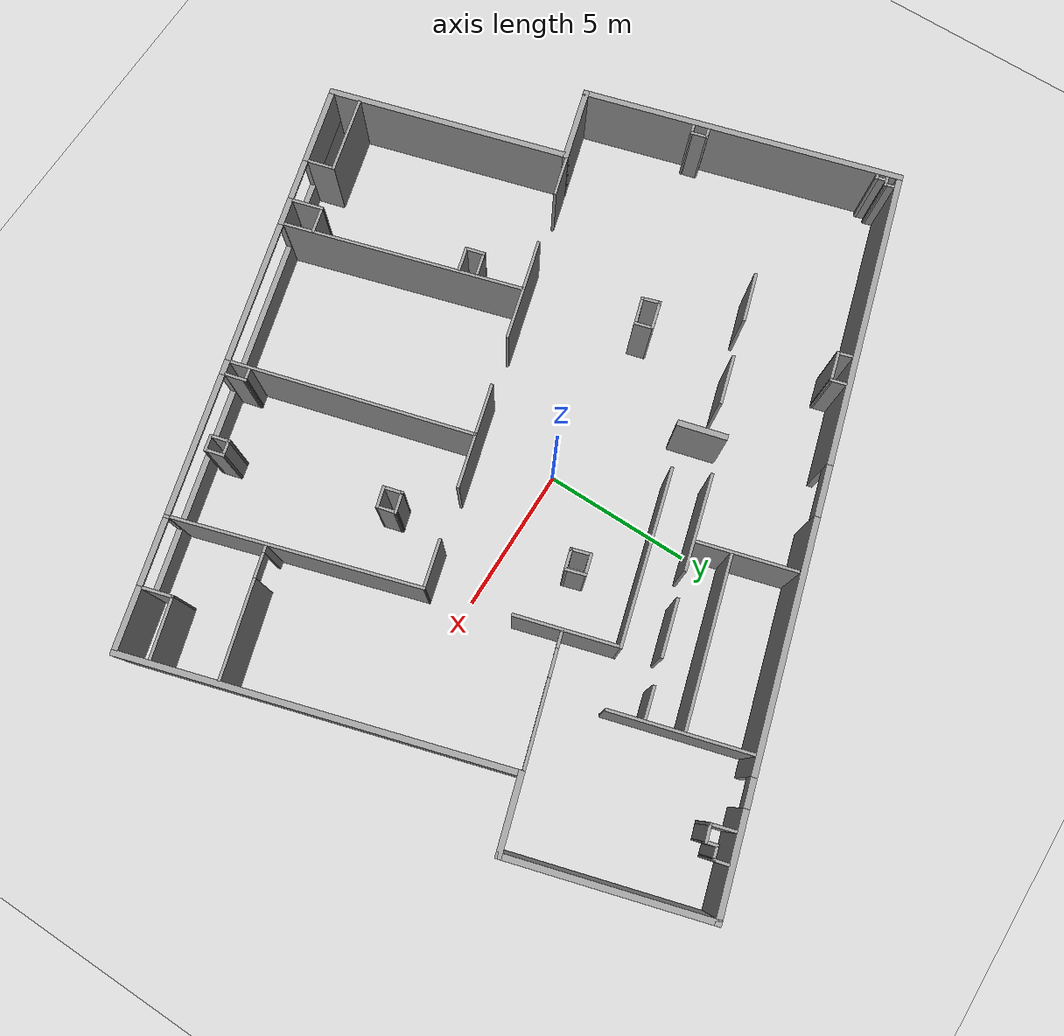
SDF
<sdf version="1.7">
 <world name="default">
  <model name="ground_plane">
   <static>1</static>
   <link name="link">
    <collision name="collision">
     <geometry><plane><normal>0 0 1</normal><size>100 100</size></plane></geometry>
     <surface><friction><ode><mu>100</mu><mu2>50</mu2></ode></friction></surface>
    </collision>
    <visual name="visual">
     <cast_shadows>0</cast_shadows>
     <geometry><plane><normal>0 0 1</normal><size>100 100</size></plane></geometry>
     <material>
      <script><uri>file://media/materials/scripts/gazebo.material</uri><name>Gazebo/Grey</name></script>
     </material>
    </visual>
    <velocity_decay><linear>0</linear><angular>0</angular></velocity_decay>
   </link>
  </model>
  <model name="PAL_office">
   <pose>-1 -1 0 0 -0 0</pose>
   <link name="Wall_10">
    <collision name="Wall_10_Collision">
     <geometry><box><size>6.73478 0.2 2.78</size></box></geometry>
     <pose>0 0 1.39 0 -0 0</pose>
    </collision>
    <visual name="Wall_10_Visual">
     <pose>0 0 1.39 0 -0 0</pose>
     <geometry><box><size>6.73478 0.2 2.78</size></box></geometry>
     <material>
      <script><uri>file://media/materials/scripts/gazebo.material</uri><name>Gazebo/Grey</name></script>
      <ambient>0.5 0.5 0.5 1</ambient>
     </material>
    </visual>
    <pose>11.1005 9.10601 0 0 -0 1.85624</pose>
    <velocity_decay><linear>0</linear><angular>0</angular></velocity_decay>
   </link>
   <link name="Wall_101">
    <collision name="Wall_101_Collision">
     <geometry><box><size>0.35 0.1 2.78</size></box></geometry>
     <pose>0 0 1.39 0 -0 0</pose>
    </collision>
    <visual name="Wall_101_Visual">
     <pose>0 0 1.39 0 -0 0</pose>
     <geometry><box><size>0.35 0.1 2.78</size></box></geometry>
     <material>
      <script><uri>file://media/materials/scripts/gazebo.material</uri><name>Gazebo/Grey</name></script>
      <ambient>0.5 0.5 0.5 1</ambient>
     </material>
    </visual>
    <pose>-13.001 5.22701 0 0 0 -2.87429</pose>
    <velocity_decay><linear>0</linear><angular>0</angular></velocity_decay>
   </link>
   <link name="Wall_103">
    <collision name="Wall_103_Collision">
     <geometry><box><size>0.35 0.1 2.78</size></box></geometry>
     <pose>0 0 1.39 0 -0 0</pose>
    </collision>
    <visual name="Wall_103_Visual">
     <pose>0 0 1.39 0 -0 0</pose>
     <geometry><box><size>0.35 0.1 2.78</size></box></geometry>
     <material>
      <script><uri>file://media/materials/scripts/gazebo.material</uri><name>Gazebo/Grey</name></script>
      <ambient>0.5 0.5 0.5 1</ambient>
     </material>
    </visual>
    <pose>-12.915 5.38001 0 0 -0 1.85075</pose>
    <velocity_decay><linear>0</linear><angular>0</angular></velocity_decay>
   </link>
   <link name="Wall_113">
    <collision name="Wall_113_Collision">
     <geometry><box><size>0.183 0.1 2.78</size></box></geometry>
     <pose>0 0 1.39 0 -0 0</pose>
    </collision>
    <visual name="Wall_113_Visual">
     <pose>0 0 1.39 0 -0 0</pose>
     <geometry><box><size>0.183 0.1 2.78</size></box></geometry>
     <material>
      <script><uri>file://media/materials/scripts/gazebo.material</uri><name>Gazebo/Grey</name></script>
      <ambient>0.5 0.5 0.5 1</ambient>
     </material>
    </visual>
    <pose>-12.9885 4.88001 0 0 -0 0.268366</pose>
    <velocity_decay><linear>0</linear><angular>0</angular></velocity_decay>
   </link>
   <link name="Wall_118">
    <collision name="Wall_118_Collision">
     <geometry><box><size>0.252054 0.1 2.78</size></box></geometry>
     <pose>0 0 1.39 0 -0 0</pose>
    </collision>
    <visual name="Wall_118_Visual">
     <pose>0 0 1.39 0 -0 0</pose>
     <geometry><box><size>0.252054 0.1 2.78</size></box></geometry>
     <material>
      <script><uri>file://media/materials/scripts/gazebo.material</uri><name>Gazebo/Grey</name></script>
      <ambient>0.5 0.5 0.5 1</ambient>
     </material>
    </visual>
    <pose>-12.996 5.05551 0 0 0 -1.31147</pose>
    <velocity_decay><linear>0</linear><angular>0</angular></velocity_decay>
   </link>
   <link name="Wall_12">
    <collision name="Wall_12_Collision">
     <geometry><box><size>2.648 0.2 2.78</size></box></geometry>
     <pose>0 0 1.39 0 -0 0</pose>
    </collision>
    <visual name="Wall_12_Visual">
     <pose>0 0 1.39 0 -0 0</pose>
     <geometry><box><size>2.648 0.2 2.78</size></box></geometry>
     <material>
      <script><uri>file://media/materials/scripts/gazebo.material</uri><name>Gazebo/Grey</name></script>
      <ambient>0.5 0.5 0.5 1</ambient>
     </material>
    </visual>
    <pose>-9.23199 -4.61199 0 0 0 -2.8652</pose>
    <velocity_decay><linear>0</linear><angular>0</angular></velocity_decay>
   </link>
   <link name="Wall_121">
    <collision name="Wall_121_Collision">
     <geometry><box><size>1.01214 0.1 2.78</size></box></geometry>
     <pose>0 0 1.39 0 -0 0</pose>
    </collision>
    <visual name="Wall_121_Visual">
     <pose>0 0 1.39 0 -0 0</pose>
     <geometry><box><size>1.01214 0.1 2.78</size></box></geometry>
     <material>
      <script><uri>file://media/materials/scripts/gazebo.material</uri><name>Gazebo/Grey</name></script>
      <ambient>0.5 0.5 0.5 1</ambient>
     </material>
    </visual>
    <pose>-4.76149 1.21201 0 0 -0 0.266252</pose>
    <velocity_decay><linear>0</linear><angular>0</angular></velocity_decay>
   </link>
   <link name="Wall_122">
    <collision name="Wall_122_Collision">
     <geometry><box><size>0.660446 0.1 2.78</size></box></geometry>
     <pose>0 0 1.39 0 -0 0</pose>
    </collision>
    <visual name="Wall_122_Visual">
     <pose>0 0 1.39 0 -0 0</pose>
     <geometry><box><size>0.660446 0.1 2.78</size></box></geometry>
     <material>
      <script><uri>file://media/materials/scripts/gazebo.material</uri><name>Gazebo/Grey</name></script>
      <ambient>0.5 0.5 0.5 1</ambient>
     </material>
    </visual>
    <pose>-4.24649 1.06201 0 0 0 -1.29985</pose>
    <velocity_decay><linear>0</linear><angular>0</angular></velocity_decay>
   </link>
   <link name="Wall_127">
    <collision name="Wall_127_Collision">
     <geometry><box><size>0.678705 0.1 2.78</size></box></geometry>
     <pose>0 0 1.39 0 -0 0</pose>
    </collision>
    <visual name="Wall_127_Visual">
     <pose>0 0 1.39 0 -0 0</pose>
     <geometry><box><size>0.678705 0.1 2.78</size></box></geometry>
     <material>
      <script><uri>file://media/materials/scripts/gazebo.material</uri><name>Gazebo/Grey</name></script>
      <ambient>0.5 0.5 0.5 1</ambient>
     </material>
    </visual>
    <pose>-5.11149 0.817011 0 0 0 -1.25451</pose>
    <velocity_decay><linear>0</linear><angular>0</angular></velocity_decay>
   </link>
   <link name="Wall_128">
    <collision name="Wall_128_Collision">
     <geometry><box><size>0.913204 0.1 2.78</size></box></geometry>
     <pose>0 0 1.39 0 -0 0</pose>
    </collision>
    <visual name="Wall_128_Visual">
     <pose>0 0 1.39 0 -0 0</pose>
     <geometry><box><size>0.913204 0.1 2.78</size></box></geometry>
     <material>
      <script><uri>file://media/materials/scripts/gazebo.material</uri><name>Gazebo/Grey</name></script>
      <ambient>0.5 0.5 0.5 1</ambient>
     </material>
    </visual>
    <pose>-4.63149 0.657011 0 0 -0 0.286745</pose>
    <velocity_decay><linear>0</linear><angular>0</angular></velocity_decay>
   </link>
   <link name="Wall_133">
    <collision name="Wall_133_Collision">
     <geometry><box><size>0.754498 0.1 2.78</size></box></geometry>
     <pose>0 0 1.39 0 -0 0</pose>
    </collision>
    <visual name="Wall_133_Visual">
     <pose>0 0 1.39 0 -0 0</pose>
     <geometry><box><size>0.754498 0.1 2.78</size></box></geometry>
     <material>
      <script><uri>file://media/materials/scripts/gazebo.material</uri><name>Gazebo/Grey</name></script>
      <ambient>0.5 0.5 0.5 1</ambient>
     </material>
    </visual>
    <pose>3.37451 3.66401 0 0 -0 0.275362</pose>
    <velocity_decay><linear>0</linear><angular>0</angular></velocity_decay>
   </link>
   <link name="Wall_134">
    <collision name="Wall_134_Collision">
     <geometry><box><size>0.726947 0.1 2.78</size></box></geometry>
     <pose>0 0 1.39 0 -0 0</pose>
    </collision>
    <visual name="Wall_134_Visual">
     <pose>0 0 1.39 0 -0 0</pose>
     <geometry><box><size>0.726947 0.1 2.78</size></box></geometry>
     <material>
      <script><uri>file://media/materials/scripts/gazebo.material</uri><name>Gazebo/Grey</name></script>
      <ambient>0.5 0.5 0.5 1</ambient>
     </material>
    </visual>
    <pose>3.77951 3.45301 0 0 0 -1.27934</pose>
    <velocity_decay><linear>0</linear><angular>0</angular></velocity_decay>
   </link>
   <link name="Wall_14">
    <collision name="Wall_14_Collision">
     <geometry><box><size>8.475 0.2 2.78</size></box></geometry>
     <pose>0 0 1.39 0 -0 0</pose>
    </collision>
    <visual name="Wall_14_Visual">
     <pose>0 0 1.39 0 -0 0</pose>
     <geometry><box><size>8.475 0.2 2.78</size></box></geometry>
     <material>
      <script><uri>file://media/materials/scripts/gazebo.material</uri><name>Gazebo/Grey</name></script>
      <ambient>0.5 0.5 0.5 1</ambient>
     </material>
    </visual>
    <pose>-6.93049 -8.25999 0 0 0 -1.29568</pose>
    <velocity_decay><linear>0</linear><angular>0</angular></velocity_decay>
   </link>
   <link name="Wall_140">
    <collision name="Wall_140_Collision">
     <geometry><box><size>0.729033 0.1 2.78</size></box></geometry>
     <pose>0 0 1.39 0 -0 0</pose>
    </collision>
    <visual name="Wall_140_Visual">
     <pose>0 0 1.39 0 -0 0</pose>
     <geometry><box><size>0.729033 0.1 2.78</size></box></geometry>
     <material>
      <script><uri>file://media/materials/scripts/gazebo.material</uri><name>Gazebo/Grey</name></script>
      <ambient>0.5 0.5 0.5 1</ambient>
     </material>
    </visual>
    <pose>3.15251 3.27451 0 0 0 -1.27066</pose>
    <velocity_decay><linear>0</linear><angular>0</angular></velocity_decay>
   </link>
   <link name="Wall_142">
    <collision name="Wall_142_Collision">
     <geometry><box><size>0.721105 0.1 2.78</size></box></geometry>
     <pose>0 0 1.39 0 -0 0</pose>
    </collision>
    <visual name="Wall_142_Visual">
     <pose>0 0 1.39 0 -0 0</pose>
     <geometry><box><size>0.721105 0.1 2.78</size></box></geometry>
     <material>
      <script><uri>file://media/materials/scripts/gazebo.material</uri><name>Gazebo/Grey</name></script>
      <ambient>0.5 0.5 0.5 1</ambient>
     </material>
    </visual>
    <pose>3.57151 3.06601 0 0 0 -2.85754</pose>
    <velocity_decay><linear>0</linear><angular>0</angular></velocity_decay>
   </link>
   <link name="Wall_145">
    <collision name="Wall_145_Collision">
     <geometry><box><size>8.27375 0.1 2.78</size></box></geometry>
     <pose>0 0 1.39 0 -0 0</pose>
    </collision>
    <visual name="Wall_145_Visual">
     <pose>0 0 1.39 0 -0 0</pose>
     <geometry><box><size>8.27375 0.1 2.78</size></box></geometry>
     <material>
      <script><uri>file://media/materials/scripts/gazebo.material</uri><name>Gazebo/Grey</name></script>
      <ambient>0.5 0.5 0.5 1</ambient>
     </material>
    </visual>
    <pose>7.88901 -4.08549 0 0 0 -1.27598</pose>
    <velocity_decay><linear>0</linear><angular>0</angular></velocity_decay>
   </link>
   <link name="Wall_147">
    <collision name="Wall_147_Collision">
     <geometry><box><size>1.6624 0.1 2.78</size></box></geometry>
     <pose>0 0 1.39 0 -0 0</pose>
    </collision>
    <visual name="Wall_147_Visual">
     <pose>0 0 1.39 0 -0 0</pose>
     <geometry><box><size>1.6624 0.1 2.78</size></box></geometry>
     <material>
      <script><uri>file://media/materials/scripts/gazebo.material</uri><name>Gazebo/Grey</name></script>
      <ambient>0.5 0.5 0.5 1</ambient>
     </material>
    </visual>
    <pose>5.94751 -0.379989 0 0 0 -2.87613</pose>
    <velocity_decay><linear>0</linear><angular>0</angular></velocity_decay>
   </link>
   <link name="Wall_150">
    <pose>10.26 -4.39249 0 0 -0 0.289894</pose>
    <visual name="Wall_150_Visual_0">
     <pose>-2.03127 0 1.39 0 -0 0</pose>
     <geometry><box><size>0.2671 0.1 2.78</size></box></geometry>
     <material>
      <script><uri>file://media/materials/scripts/gazebo.material</uri><name>Gazebo/Grey</name></script>
      <ambient>0.5 0.5 0.5 1</ambient>
     </material>
    </visual>
    <collision name="Wall_150_Collision_0">
     <geometry><box><size>0.2671 0.1 2.78</size></box></geometry>
     <pose>-2.03127 0 1.39 0 -0 0</pose>
    </collision>
    <visual name="Wall_150_Visual_1">
     <pose>0.54355 0 1.39 0 -0 0</pose>
     <geometry><box><size>3.24255 0.1 2.78</size></box></geometry>
     <material>
      <script><uri>file://media/materials/scripts/gazebo.material</uri><name>Gazebo/Grey</name></script>
      <ambient>0.5 0.5 0.5 1</ambient>
     </material>
    </visual>
    <collision name="Wall_150_Collision_1">
     <geometry><box><size>3.24255 0.1 2.78</size></box></geometry>
     <pose>0.54355 0 1.39 0 -0 0</pose>
    </collision>
    <visual name="Wall_150_Visual_2">
     <pose>-1.48772 0 2.44 0 -0 0</pose>
     <geometry><box><size>0.82 0.1 0.68</size></box></geometry>
     <material>
      <script><uri>file://media/materials/scripts/gazebo.material</uri><name>Gazebo/Grey</name></script>
      <ambient>0.5 0.5 0.5 1</ambient>
     </material>
    </visual>
    <collision name="Wall_150_Collision_2">
     <geometry><box><size>0.82 0.1 0.68</size></box></geometry>
     <pose>-1.48772 0 2.44 0 -0 0</pose>
    </collision>
    <velocity_decay><linear>0</linear><angular>0</angular></velocity_decay>
   </link>
   <link name="Wall_153">
    <collision name="Wall_153_Collision">
     <geometry><box><size>2.08407 0.1 2.78</size></box></geometry>
     <pose>0 0 1.39 0 -0 0</pose>
    </collision>
    <visual name="Wall_153_Visual">
     <pose>0 0 1.39 0 -0 0</pose>
     <geometry><box><size>2.08407 0.1 2.78</size></box></geometry>
     <material>
      <script><uri>file://media/materials/scripts/gazebo.material</uri><name>Gazebo/Grey</name></script>
      <ambient>0.5 0.5 0.5 1</ambient>
     </material>
    </visual>
    <pose>11.9955 -6.18599 0 0 0 -2.85014</pose>
    <velocity_decay><linear>0</linear><angular>0</angular></velocity_decay>
   </link>
   <link name="Wall_154">
    <collision name="Wall_154_Collision">
     <geometry><box><size>1.04397 0.1 2.78</size></box></geometry>
     <pose>0 0 1.39 0 -0 0</pose>
    </collision>
    <visual name="Wall_154_Visual">
     <pose>0 0 1.39 0 -0 0</pose>
     <geometry><box><size>1.04397 0.1 2.78</size></box></geometry>
     <material>
      <script><uri>file://media/materials/scripts/gazebo.material</uri><name>Gazebo/Grey</name></script>
      <ambient>0.5 0.5 0.5 1</ambient>
     </material>
    </visual>
    <pose>11.176 -6.92449 0 0 0 -1.29061</pose>
    <velocity_decay><linear>0</linear><angular>0</angular></velocity_decay>
   </link>
   <link name="Wall_158">
    <collision name="Wall_158_Collision">
     <geometry><box><size>3.52366 0.1 2.78</size></box></geometry>
     <pose>0 0 1.39 0 -0 0</pose>
    </collision>
    <visual name="Wall_158_Visual">
     <pose>0 0 1.39 0 -0 0</pose>
     <geometry><box><size>3.52366 0.1 2.78</size></box></geometry>
     <material>
      <script><uri>file://media/materials/scripts/gazebo.material</uri><name>Gazebo/Grey</name></script>
      <ambient>0.5 0.5 0.5 1</ambient>
     </material>
    </visual>
    <pose>-3.20649 -2.89249 0 0 -0 0.269352</pose>
    <velocity_decay><linear>0</linear><angular>0</angular></velocity_decay>
   </link>
   <link name="Wall_16">
    <pose>3.78351 -9.59399 0 0 0 -2.87199</pose>
    <visual name="Wall_16_Visual_0">
     <pose>-8.83974 0 1.39 0 -0 0</pose>
     <geometry><box><size>2.04382 0.2 2.78</size></box></geometry>
     <material>
      <script><uri>file://media/materials/scripts/gazebo.material</uri><name>Gazebo/Grey</name></script>
      <ambient>0.5 0.5 0.5 1</ambient>
     </material>
    </visual>
    <collision name="Wall_16_Collision_0">
     <geometry><box><size>2.04382 0.2 2.78</size></box></geometry>
     <pose>-8.83974 0 1.39 0 -0 0</pose>
    </collision>
    <visual name="Wall_16_Visual_1">
     <pose>1.02191 0 0.55 0 -0 0</pose>
     <geometry><box><size>17.6795 0.2 1.1</size></box></geometry>
     <material>
      <script><uri>file://media/materials/scripts/gazebo.material</uri><name>Gazebo/Grey</name></script>
      <ambient>0.5 0.5 0.5 1</ambient>
     </material>
    </visual>
    <collision name="Wall_16_Collision_1">
     <geometry><box><size>17.6795 0.2 1.1</size></box></geometry>
     <pose>1.02191 0 0.55 0 -0 0</pose>
    </collision>
    <visual name="Wall_16_Visual_2">
     <pose>-5.54535 0 1.94 0 -0 0</pose>
     <geometry><box><size>0.100368 0.2 1.68</size></box></geometry>
     <material>
      <script><uri>file://media/materials/scripts/gazebo.material</uri><name>Gazebo/Grey</name></script>
      <ambient>0.5 0.5 0.5 1</ambient>
     </material>
    </visual>
    <collision name="Wall_16_Collision_2">
     <geometry><box><size>0.100368 0.2 1.68</size></box></geometry>
     <pose>-5.54535 0 1.94 0 -0 0</pose>
    </collision>
    <visual name="Wall_16_Visual_3">
     <pose>-0.435842 0 1.94 0 -0 0</pose>
     <geometry><box><size>0.509797 0.2 1.68</size></box></geometry>
     <material>
      <script><uri>file://media/materials/scripts/gazebo.material</uri><name>Gazebo/Grey</name></script>
      <ambient>0.5 0.5 0.5 1</ambient>
     </material>
    </visual>
    <collision name="Wall_16_Collision_3">
     <geometry><box><size>0.509797 0.2 1.68</size></box></geometry>
     <pose>-0.435842 0 1.94 0 -0 0</pose>
    </collision>
    <visual name="Wall_16_Visual_4">
     <pose>5.27686 0 1.94 0 -0 0</pose>
     <geometry><box><size>0.994619 0.2 1.68</size></box></geometry>
     <material>
      <script><uri>file://media/materials/scripts/gazebo.material</uri><name>Gazebo/Grey</name></script>
      <ambient>0.5 0.5 0.5 1</ambient>
     </material>
    </visual>
    <collision name="Wall_16_Collision_4">
     <geometry><box><size>0.994619 0.2 1.68</size></box></geometry>
     <pose>5.27686 0 1.94 0 -0 0</pose>
    </collision>
    <visual name="Wall_16_Visual_5">
     <pose>8.53741 0 1.94 0 -0 0</pose>
     <geometry><box><size>2.64848 0.2 1.68</size></box></geometry>
     <material>
      <script><uri>file://media/materials/scripts/gazebo.material</uri><name>Gazebo/Grey</name></script>
      <ambient>0.5 0.5 0.5 1</ambient>
     </material>
    </visual>
    <collision name="Wall_16_Collision_5">
     <geometry><box><size>2.64848 0.2 1.68</size></box></geometry>
     <pose>8.53741 0 1.94 0 -0 0</pose>
    </collision>
    <visual name="Wall_16_Visual_6">
     <pose>-6.70668 0 2.74 0 -0 0</pose>
     <geometry><box><size>2.22229 0.2 0.08</size></box></geometry>
     <material>
      <script><uri>file://media/materials/scripts/gazebo.material</uri><name>Gazebo/Grey</name></script>
      <ambient>0.5 0.5 0.5 1</ambient>
     </material>
    </visual>
    <collision name="Wall_16_Collision_6">
     <geometry><box><size>2.22229 0.2 0.08</size></box></geometry>
     <pose>-6.70668 0 2.74 0 -0 0</pose>
    </collision>
    <visual name="Wall_16_Visual_7">
     <pose>-3.09295 0 2.74 0 -0 0</pose>
     <geometry><box><size>4.80443 0.2 0.08</size></box></geometry>
     <material>
      <script><uri>file://media/materials/scripts/gazebo.material</uri><name>Gazebo/Grey</name></script>
      <ambient>0.5 0.5 0.5 1</ambient>
     </material>
    </visual>
    <collision name="Wall_16_Collision_7">
     <geometry><box><size>4.80443 0.2 0.08</size></box></geometry>
     <pose>-3.09295 0 2.74 0 -0 0</pose>
    </collision>
    <visual name="Wall_16_Visual_8">
     <pose>2.2993 0 2.74 0 -0 0</pose>
     <geometry><box><size>4.96049 0.2 0.08</size></box></geometry>
     <material>
      <script><uri>file://media/materials/scripts/gazebo.material</uri><name>Gazebo/Grey</name></script>
      <ambient>0.5 0.5 0.5 1</ambient>
     </material>
    </visual>
    <collision name="Wall_16_Collision_8">
     <geometry><box><size>4.96049 0.2 0.08</size></box></geometry>
     <pose>2.2993 0 2.74 0 -0 0</pose>
    </collision>
    <visual name="Wall_16_Visual_9">
     <pose>6.49367 0 2.74 0 -0 0</pose>
     <geometry><box><size>1.439 0.2 0.08</size></box></geometry>
     <material>
      <script><uri>file://media/materials/scripts/gazebo.material</uri><name>Gazebo/Grey</name></script>
      <ambient>0.5 0.5 0.5 1</ambient>
     </material>
    </visual>
    <collision name="Wall_16_Collision_9">
     <geometry><box><size>1.439 0.2 0.08</size></box></geometry>
     <pose>6.49367 0 2.74 0 -0 0</pose>
    </collision>
    <velocity_decay><linear>0</linear><angular>0</angular></velocity_decay>
   </link>
   <link name="Wall_160">
    <collision name="Wall_160_Collision">
     <geometry><box><size>3.56369 0.1 2.78</size></box></geometry>
     <pose>0 0 1.39 0 -0 0</pose>
    </collision>
    <visual name="Wall_160_Visual">
     <pose>0 0 1.39 0 -0 0</pose>
     <geometry><box><size>3.56369 0.1 2.78</size></box></geometry>
     <material>
      <script><uri>file://media/materials/scripts/gazebo.material</uri><name>Gazebo/Grey</name></script>
      <ambient>0.5 0.5 0.5 1</ambient>
     </material>
    </visual>
    <pose>1.79301 -1.50349 0 0 -0 0.269139</pose>
    <velocity_decay><linear>0</linear><angular>0</angular></velocity_decay>
   </link>
   <link name="Wall_162">
    <collision name="Wall_162_Collision">
     <geometry><box><size>1.39174 0.1 2.78</size></box></geometry>
     <pose>0 0 1.39 0 -0 0</pose>
    </collision>
    <visual name="Wall_162_Visual">
     <pose>0 0 1.39 0 -0 0</pose>
     <geometry><box><size>1.39174 0.1 2.78</size></box></geometry>
     <material>
      <script><uri>file://media/materials/scripts/gazebo.material</uri><name>Gazebo/Grey</name></script>
      <ambient>0.5 0.5 0.5 1</ambient>
     </material>
    </visual>
    <pose>-7.30849 -4.02049 0 0 0 -2.86808</pose>
    <velocity_decay><linear>0</linear><angular>0</angular></velocity_decay>
   </link>
   <link name="Wall_164">
    <collision name="Wall_164_Collision">
     <geometry><box><size>8.25895 0.1 2.78</size></box></geometry>
     <pose>0 0 1.39 0 -0 0</pose>
    </collision>
    <visual name="Wall_164_Visual">
     <pose>0 0 1.39 0 -0 0</pose>
     <geometry><box><size>8.25895 0.1 2.78</size></box></geometry>
     <material>
      <script><uri>file://media/materials/scripts/gazebo.material</uri><name>Gazebo/Grey</name></script>
      <ambient>0.5 0.5 0.5 1</ambient>
     </material>
    </visual>
    <pose>2.85601 -5.47899 0 0 0 -1.3012</pose>
    <velocity_decay><linear>0</linear><angular>0</angular></velocity_decay>
   </link>
   <link name="Wall_166">
    <collision name="Wall_166_Collision">
     <geometry><box><size>8.22 0.1 2.78</size></box></geometry>
     <pose>0 0 1.39 0 -0 0</pose>
    </collision>
    <visual name="Wall_166_Visual">
     <pose>0 0 1.39 0 -0 0</pose>
     <geometry><box><size>8.22 0.1 2.78</size></box></geometry>
     <material>
      <script><uri>file://media/materials/scripts/gazebo.material</uri><name>Gazebo/Grey</name></script>
      <ambient>0.5 0.5 0.5 1</ambient>
     </material>
    </visual>
    <pose>-2.06049 -6.85199 0 0 0 -1.28668</pose>
    <velocity_decay><linear>0</linear><angular>0</angular></velocity_decay>
   </link>
   <link name="Wall_168">
    <collision name="Wall_168_Collision">
     <geometry><box><size>0.743567 0.1 2.78</size></box></geometry>
     <pose>0 0 1.39 0 -0 0</pose>
    </collision>
    <visual name="Wall_168_Visual">
     <pose>0 0 1.39 0 -0 0</pose>
     <geometry><box><size>0.743567 0.1 2.78</size></box></geometry>
     <material>
      <script><uri>file://media/materials/scripts/gazebo.material</uri><name>Gazebo/Grey</name></script>
      <ambient>0.5 0.5 0.5 1</ambient>
     </material>
    </visual>
    <pose>4.88801 -2.31549 0 0 -0 0.288331</pose>
    <velocity_decay><linear>0</linear><angular>0</angular></velocity_decay>
   </link>
   <link name="Wall_169">
    <collision name="Wall_169_Collision">
     <geometry><box><size>0.700613 0.1 2.78</size></box></geometry>
     <pose>0 0 1.39 0 -0 0</pose>
    </collision>
    <visual name="Wall_169_Visual">
     <pose>0 0 1.39 0 -0 0</pose>
     <geometry><box><size>0.700613 0.1 2.78</size></box></geometry>
     <material>
      <script><uri>file://media/materials/scripts/gazebo.material</uri><name>Gazebo/Grey</name></script>
      <ambient>0.5 0.5 0.5 1</ambient>
     </material>
    </visual>
    <pose>5.27451 -2.51399 0 0 0 -1.30805</pose>
    <velocity_decay><linear>0</linear><angular>0</angular></velocity_decay>
   </link>
   <link name="Wall_171">
    <collision name="Wall_171_Collision">
     <geometry><box><size>0.699643 0.1 2.78</size></box></geometry>
     <pose>0 0 1.39 0 -0 0</pose>
    </collision>
    <visual name="Wall_171_Visual">
     <pose>0 0 1.39 0 -0 0</pose>
     <geometry><box><size>0.699643 0.1 2.78</size></box></geometry>
     <material>
      <script><uri>file://media/materials/scripts/gazebo.material</uri><name>Gazebo/Grey</name></script>
      <ambient>0.5 0.5 0.5 1</ambient>
     </material>
    </visual>
    <pose>4.65701 -2.69649 0 0 0 -1.30923</pose>
    <velocity_decay><linear>0</linear><angular>0</angular></velocity_decay>
   </link>
   <link name="Wall_172">
    <collision name="Wall_172_Collision">
     <geometry><box><size>0.74415 0.1 2.78</size></box></geometry>
     <pose>0 0 1.39 0 -0 0</pose>
    </collision>
    <visual name="Wall_172_Visual">
     <pose>0 0 1.39 0 -0 0</pose>
     <geometry><box><size>0.74415 0.1 2.78</size></box></geometry>
     <material>
      <script><uri>file://media/materials/scripts/gazebo.material</uri><name>Gazebo/Grey</name></script>
      <ambient>0.5 0.5 0.5 1</ambient>
     </material>
    </visual>
    <pose>5.04351 -2.89499 0 0 -0 0.286402</pose>
    <velocity_decay><linear>0</linear><angular>0</angular></velocity_decay>
   </link>
   <link name="Wall_178">
    <collision name="Wall_178_Collision">
     <geometry><box><size>0.577966 0.1 2.78</size></box></geometry>
     <pose>0 0 1.39 0 -0 0</pose>
    </collision>
    <visual name="Wall_178_Visual">
     <pose>0 0 1.39 0 -0 0</pose>
     <geometry><box><size>0.577966 0.1 2.78</size></box></geometry>
     <material>
      <script><uri>file://media/materials/scripts/gazebo.material</uri><name>Gazebo/Grey</name></script>
      <ambient>0.5 0.5 0.5 1</ambient>
     </material>
    </visual>
    <pose>6.36001 -7.86249 0 0 0 -2.89002</pose>
    <velocity_decay><linear>0</linear><angular>0</angular></velocity_decay>
   </link>
   <link name="Wall_179">
    <collision name="Wall_179_Collision">
     <geometry><box><size>0.699835 0.1 2.78</size></box></geometry>
     <pose>0 0 1.39 0 -0 0</pose>
    </collision>
    <visual name="Wall_179_Visual">
     <pose>0 0 1.39 0 -0 0</pose>
     <geometry><box><size>0.699835 0.1 2.78</size></box></geometry>
     <material>
      <script><uri>file://media/materials/scripts/gazebo.material</uri><name>Gazebo/Grey</name></script>
      <ambient>0.5 0.5 0.5 1</ambient>
     </material>
    </visual>
    <pose>6.20601 -8.21149 0 0 0 -1.30923</pose>
    <velocity_decay><linear>0</linear><angular>0</angular></velocity_decay>
   </link>
   <link name="Wall_181">
    <collision name="Wall_181_Collision">
     <geometry><box><size>0.699779 0.1 2.78</size></box></geometry>
     <pose>0 0 1.39 0 -0 0</pose>
    </collision>
    <visual name="Wall_181_Visual">
     <pose>0 0 1.39 0 -0 0</pose>
     <geometry><box><size>0.699779 0.1 2.78</size></box></geometry>
     <material>
      <script><uri>file://media/materials/scripts/gazebo.material</uri><name>Gazebo/Grey</name></script>
      <ambient>0.5 0.5 0.5 1</ambient>
     </material>
    </visual>
    <pose>6.66901 -8.09249 0 0 0 -1.30923</pose>
    <velocity_decay><linear>0</linear><angular>0</angular></velocity_decay>
   </link>
   <link name="Wall_182">
    <collision name="Wall_182_Collision">
     <geometry><box><size>0.578048 0.1 2.78</size></box></geometry>
     <pose>0 0 1.39 0 -0 0</pose>
    </collision>
    <visual name="Wall_182_Visual">
     <pose>0 0 1.39 0 -0 0</pose>
     <geometry><box><size>0.578048 0.1 2.78</size></box></geometry>
     <material>
      <script><uri>file://media/materials/scripts/gazebo.material</uri><name>Gazebo/Grey</name></script>
      <ambient>0.5 0.5 0.5 1</ambient>
     </material>
    </visual>
    <pose>6.51501 -8.44149 0 0 0 -2.89002</pose>
    <velocity_decay><linear>0</linear><angular>0</angular></velocity_decay>
   </link>
   <link name="Wall_185">
    <collision name="Wall_185_Collision">
     <geometry><box><size>0.75 0.1 2.78</size></box></geometry>
     <pose>0 0 1.39 0 -0 0</pose>
    </collision>
    <visual name="Wall_185_Visual">
     <pose>0 0 1.39 0 -0 0</pose>
     <geometry><box><size>0.75 0.1 2.78</size></box></geometry>
     <material>
      <script><uri>file://media/materials/scripts/gazebo.material</uri><name>Gazebo/Grey</name></script>
      <ambient>0.5 0.5 0.5 1</ambient>
     </material>
    </visual>
    <pose>4.28501 -8.98999 0 0 0 -1.3206</pose>
    <velocity_decay><linear>0</linear><angular>0</angular></velocity_decay>
   </link>
   <link name="Wall_189">
    <collision name="Wall_189_Collision">
     <geometry><box><size>0.478287 0.1 2.78</size></box></geometry>
     <pose>0 0 1.39 0 -0 0</pose>
    </collision>
    <visual name="Wall_189_Visual">
     <pose>0 0 1.39 0 -0 0</pose>
     <geometry><box><size>0.478287 0.1 2.78</size></box></geometry>
     <material>
      <script><uri>file://media/materials/scripts/gazebo.material</uri><name>Gazebo/Grey</name></script>
      <ambient>0.5 0.5 0.5 1</ambient>
     </material>
    </visual>
    <pose>4.02201 -8.72399 0 0 0 -2.87929</pose>
    <velocity_decay><linear>0</linear><angular>0</angular></velocity_decay>
   </link>
   <link name="Wall_191">
    <collision name="Wall_191_Collision">
     <geometry><box><size>2.70029 0.1 2.78</size></box></geometry>
     <pose>0 0 1.39 0 -0 0</pose>
    </collision>
    <visual name="Wall_191_Visual">
     <pose>0 0 1.39 0 -0 0</pose>
     <geometry><box><size>2.70029 0.1 2.78</size></box></geometry>
     <material>
      <script><uri>file://media/materials/scripts/gazebo.material</uri><name>Gazebo/Grey</name></script>
      <ambient>0.5 0.5 0.5 1</ambient>
     </material>
    </visual>
    <pose>-4.71249 -10.9095 0 0 -0 0.261767</pose>
    <velocity_decay><linear>0</linear><angular>0</angular></velocity_decay>
   </link>
   <link name="Wall_192">
    <collision name="Wall_192_Collision">
     <geometry><box><size>0.952808 0.1 2.78</size></box></geometry>
     <pose>0 0 1.39 0 -0 0</pose>
    </collision>
    <visual name="Wall_192_Visual">
     <pose>0 0 1.39 0 -0 0</pose>
     <geometry><box><size>0.952808 0.1 2.78</size></box></geometry>
     <material>
      <script><uri>file://media/materials/scripts/gazebo.material</uri><name>Gazebo/Grey</name></script>
      <ambient>0.5 0.5 0.5 1</ambient>
     </material>
    </visual>
    <pose>-3.34599 -10.985 0 0 0 -1.30876</pose>
    <velocity_decay><linear>0</linear><angular>0</angular></velocity_decay>
   </link>
   <link name="Wall_194">
    <collision name="Wall_194_Collision">
     <geometry><box><size>0.950031 0.1 2.78</size></box></geometry>
     <pose>0 0 1.39 0 -0 0</pose>
    </collision>
    <visual name="Wall_194_Visual">
     <pose>0 0 1.39 0 -0 0</pose>
     <geometry><box><size>0.950031 0.1 2.78</size></box></geometry>
     <material>
      <script><uri>file://media/materials/scripts/gazebo.material</uri><name>Gazebo/Grey</name></script>
      <ambient>0.5 0.5 0.5 1</ambient>
     </material>
    </visual>
    <pose>-1.62899 -9.93999 0 0 -0 0.261815</pose>
    <velocity_decay><linear>0</linear><angular>0</angular></velocity_decay>
   </link>
   <link name="Wall_196">
    <collision name="Wall_196_Collision">
     <geometry><box><size>1.08791 0.1 2.78</size></box></geometry>
     <pose>0 0 1.39 0 -0 0</pose>
    </collision>
    <visual name="Wall_196_Visual">
     <pose>0 0 1.39 0 -0 0</pose>
     <geometry><box><size>1.08791 0.1 2.78</size></box></geometry>
     <material>
      <script><uri>file://media/materials/scripts/gazebo.material</uri><name>Gazebo/Grey</name></script>
      <ambient>0.5 0.5 0.5 1</ambient>
     </material>
    </visual>
    <pose>-1.90449 -10.525 0 0 0 -1.29389</pose>
    <velocity_decay><linear>0</linear><angular>0</angular></velocity_decay>
   </link>
   <link name="Wall_200">
    <collision name="Wall_200_Collision">
     <geometry><box><size>0.699598 0.1 2.78</size></box></geometry>
     <pose>0 0 1.39 0 -0 0</pose>
    </collision>
    <visual name="Wall_200_Visual">
     <pose>0 0 1.39 0 -0 0</pose>
     <geometry><box><size>0.699598 0.1 2.78</size></box></geometry>
     <material>
      <script><uri>file://media/materials/scripts/gazebo.material</uri><name>Gazebo/Grey</name></script>
      <ambient>0.5 0.5 0.5 1</ambient>
     </material>
    </visual>
    <pose>-3.48749 -4.94449 0 0 0 -1.30762</pose>
    <velocity_decay><linear>0</linear><angular>0</angular></velocity_decay>
   </link>
   <link name="Wall_202">
    <collision name="Wall_202_Collision">
     <geometry><box><size>0.838717 0.1 2.78</size></box></geometry>
     <pose>0 0 1.39 0 -0 0</pose>
    </collision>
    <visual name="Wall_202_Visual">
     <pose>0 0 1.39 0 -0 0</pose>
     <geometry><box><size>0.838717 0.1 2.78</size></box></geometry>
     <material>
      <script><uri>file://media/materials/scripts/gazebo.material</uri><name>Gazebo/Grey</name></script>
      <ambient>0.5 0.5 0.5 1</ambient>
     </material>
    </visual>
    <pose>-3.21049 -4.55299 0 0 -0 0.279787</pose>
    <velocity_decay><linear>0</linear><angular>0</angular></velocity_decay>
   </link>
   <link name="Wall_204">
    <collision name="Wall_204_Collision">
     <geometry><box><size>0.862099 0.1 2.78</size></box></geometry>
     <pose>0 0 1.39 0 -0 0</pose>
    </collision>
    <visual name="Wall_204_Visual">
     <pose>0 0 1.39 0 -0 0</pose>
     <geometry><box><size>0.862099 0.1 2.78</size></box></geometry>
     <material>
      <script><uri>file://media/materials/scripts/gazebo.material</uri><name>Gazebo/Grey</name></script>
      <ambient>0.5 0.5 0.5 1</ambient>
     </material>
    </visual>
    <pose>-3.04199 -5.13399 0 0 -0 0.265676</pose>
    <velocity_decay><linear>0</linear><angular>0</angular></velocity_decay>
   </link>
   <link name="Wall_21">
    <collision name="Wall_21_Collision">
     <geometry><box><size>2.596 0.2 2.78</size></box></geometry>
     <pose>0 0 1.39 0 -0 0</pose>
    </collision>
    <visual name="Wall_21_Visual">
     <pose>0 0 1.39 0 -0 0</pose>
     <geometry><box><size>2.596 0.2 2.78</size></box></geometry>
     <material>
      <script><uri>file://media/materials/scripts/gazebo.material</uri><name>Gazebo/Grey</name></script>
      <ambient>0.5 0.5 0.5 1</ambient>
     </material>
    </visual>
    <pose>10.873 5.62701 0 0 0 -2.85034</pose>
    <velocity_decay><linear>0</linear><angular>0</angular></velocity_decay>
   </link>
   <link name="Wall_28">
    <collision name="Wall_28_Collision">
     <geometry><box><size>12.756 0.2 2.78</size></box></geometry>
     <pose>0 0 1.39 0 -0 0</pose>
    </collision>
    <visual name="Wall_28_Visual">
     <pose>0 0 1.39 0 -0 0</pose>
     <geometry><box><size>12.756 0.2 2.78</size></box></geometry>
     <material>
      <script><uri>file://media/materials/scripts/gazebo.material</uri><name>Gazebo/Grey</name></script>
      <ambient>0.5 0.5 0.5 1</ambient>
     </material>
    </visual>
    <pose>11.575 -0.925489 0 0 -0 1.86035</pose>
    <velocity_decay><linear>0</linear><angular>0</angular></velocity_decay>
   </link>
   <link name="Wall_33">
    <collision name="Wall_33_Collision">
     <geometry><box><size>1.65613 0.2 2.78</size></box></geometry>
     <pose>0 0 1.39 0 -0 0</pose>
    </collision>
    <visual name="Wall_33_Visual">
     <pose>0 0 1.39 0 -0 0</pose>
     <geometry><box><size>1.65613 0.2 2.78</size></box></geometry>
     <material>
      <script><uri>file://media/materials/scripts/gazebo.material</uri><name>Gazebo/Grey</name></script>
      <ambient>0.5 0.5 0.5 1</ambient>
     </material>
    </visual>
    <pose>-2.22699 4.43951 0 0 0 -1.31033</pose>
    <velocity_decay><linear>0</linear><angular>0</angular></velocity_decay>
   </link>
   <link name="Wall_38">
    <collision name="Wall_38_Collision">
     <geometry><box><size>0.558077 0.1 2.78</size></box></geometry>
     <pose>0 0 1.39 0 -0 0</pose>
    </collision>
    <visual name="Wall_38_Visual">
     <pose>0 0 1.39 0 -0 0</pose>
     <geometry><box><size>0.558077 0.1 2.78</size></box></geometry>
     <material>
      <script><uri>file://media/materials/scripts/gazebo.material</uri><name>Gazebo/Grey</name></script>
      <ambient>0.5 0.5 0.5 1</ambient>
     </material>
    </visual>
    <pose>-5.93999 7.27151 0 0 0 -1.29459</pose>
    <velocity_decay><linear>0</linear><angular>0</angular></velocity_decay>
   </link>
   <link name="Wall_39">
    <collision name="Wall_39_Collision">
     <geometry><box><size>1.06 0.1 2.78</size></box></geometry>
     <pose>0 0 1.39 0 -0 0</pose>
    </collision>
    <visual name="Wall_39_Visual">
     <pose>0 0 1.39 0 -0 0</pose>
     <geometry><box><size>1.06 0.1 2.78</size></box></geometry>
     <material>
      <script><uri>file://media/materials/scripts/gazebo.material</uri><name>Gazebo/Grey</name></script>
      <ambient>0.5 0.5 0.5 1</ambient>
     </material>
    </visual>
    <pose>-6.34099 6.92601 0 0 0 -2.87817</pose>
    <velocity_decay><linear>0</linear><angular>0</angular></velocity_decay>
   </link>
   <link name="Wall_4">
    <collision name="Wall_4_Collision">
     <geometry><box><size>11.09 0.2 2.78</size></box></geometry>
     <pose>0 0 1.39 0 -0 0</pose>
    </collision>
    <visual name="Wall_4_Visual">
     <pose>0 0 1.39 0 -0 0</pose>
     <geometry><box><size>11.09 0.2 2.78</size></box></geometry>
     <material>
      <script><uri>file://media/materials/scripts/gazebo.material</uri><name>Gazebo/Grey</name></script>
      <ambient>0.5 0.5 0.5 1</ambient>
     </material>
    </visual>
    <pose>-11.889 0.294011 0 0 -0 1.84598</pose>
    <velocity_decay><linear>0</linear><angular>0</angular></velocity_decay>
   </link>
   <link name="Wall_40">
    <collision name="Wall_40_Collision">
     <geometry><box><size>0.538963 0.1 2.78</size></box></geometry>
     <pose>0 0 1.39 0 -0 0</pose>
    </collision>
    <visual name="Wall_40_Visual">
     <pose>0 0 1.39 0 -0 0</pose>
     <geometry><box><size>0.538963 0.1 2.78</size></box></geometry>
     <material>
      <script><uri>file://media/materials/scripts/gazebo.material</uri><name>Gazebo/Grey</name></script>
      <ambient>0.5 0.5 0.5 1</ambient>
     </material>
    </visual>
    <pose>-6.86699 7.01151 0 0 -0 1.85942</pose>
    <velocity_decay><linear>0</linear><angular>0</angular></velocity_decay>
   </link>
   <link name="Wall_43">
    <collision name="Wall_43_Collision">
     <geometry><box><size>3.24124 0.1 2.78</size></box></geometry>
     <pose>0 0 1.39 0 -0 0</pose>
    </collision>
    <visual name="Wall_43_Visual">
     <pose>0 0 1.39 0 -0 0</pose>
     <geometry><box><size>3.24124 0.1 2.78</size></box></geometry>
     <material>
      <script><uri>file://media/materials/scripts/gazebo.material</uri><name>Gazebo/Grey</name></script>
      <ambient>0.5 0.5 0.5 1</ambient>
     </material>
    </visual>
    <pose>0.389508 5.84601 0 0 -0 0.267369</pose>
    <velocity_decay><linear>0</linear><angular>0</angular></velocity_decay>
   </link>
   <link name="Wall_45">
    <collision name="Wall_45_Collision">
     <geometry><box><size>1.91692 0.1 2.78</size></box></geometry>
     <pose>0 0 1.39 0 -0 0</pose>
    </collision>
    <visual name="Wall_45_Visual">
     <pose>0 0 1.39 0 -0 0</pose>
     <geometry><box><size>1.91692 0.1 2.78</size></box></geometry>
     <material>
      <script><uri>file://media/materials/scripts/gazebo.material</uri><name>Gazebo/Grey</name></script>
      <ambient>0.5 0.5 0.5 1</ambient>
     </material>
    </visual>
    <pose>3.68951 6.76601 0 0 -0 0.273009</pose>
    <velocity_decay><linear>0</linear><angular>0</angular></velocity_decay>
   </link>
   <link name="Wall_47">
    <collision name="Wall_47_Collision">
     <geometry><box><size>1.06 0.1 2.78</size></box></geometry>
     <pose>0 0 1.39 0 -0 0</pose>
    </collision>
    <visual name="Wall_47_Visual">
     <pose>0 0 1.39 0 -0 0</pose>
     <geometry><box><size>1.06 0.1 2.78</size></box></geometry>
     <material>
      <script><uri>file://media/materials/scripts/gazebo.material</uri><name>Gazebo/Grey</name></script>
      <ambient>0.5 0.5 0.5 1</ambient>
     </material>
    </visual>
    <pose>5.92701 7.39951 0 0 -0 0.271003</pose>
    <velocity_decay><linear>0</linear><angular>0</angular></velocity_decay>
   </link>
   <link name="Wall_50">
    <collision name="Wall_50_Collision">
     <geometry><box><size>4.61888 0.1 2.78</size></box></geometry>
     <pose>0 0 1.39 0 -0 0</pose>
    </collision>
    <visual name="Wall_50_Visual">
     <pose>0 0 1.39 0 -0 0</pose>
     <geometry><box><size>4.61888 0.1 2.78</size></box></geometry>
     <material>
      <script><uri>file://media/materials/scripts/gazebo.material</uri><name>Gazebo/Grey</name></script>
      <ambient>0.5 0.5 0.5 1</ambient>
     </material>
    </visual>
    <pose>6.18151 8.60301 0 0 -0 1.85013</pose>
    <velocity_decay><linear>0</linear><angular>0</angular></velocity_decay>
   </link>
   <link name="Wall_52">
    <collision name="Wall_52_Collision">
     <geometry><box><size>3.325 0.1 2.78</size></box></geometry>
     <pose>0 0 1.39 0 -0 0</pose>
    </collision>
    <visual name="Wall_52_Visual">
     <pose>0 0 1.39 0 -0 0</pose>
     <geometry><box><size>3.325 0.1 2.78</size></box></geometry>
     <material>
      <script><uri>file://media/materials/scripts/gazebo.material</uri><name>Gazebo/Grey</name></script>
      <ambient>0.5 0.5 0.5 1</ambient>
     </material>
    </visual>
    <pose>0.530508 7.64401 0 0 -0 1.84586</pose>
    <velocity_decay><linear>0</linear><angular>0</angular></velocity_decay>
   </link>
   <link name="Wall_54">
    <collision name="Wall_54_Collision">
     <geometry><box><size>5.612 0.1 2.78</size></box></geometry>
     <pose>0 0 1.39 0 -0 0</pose>
    </collision>
    <visual name="Wall_54_Visual">
     <pose>0 0 1.39 0 -0 0</pose>
     <geometry><box><size>5.612 0.1 2.78</size></box></geometry>
     <material>
      <script><uri>file://media/materials/scripts/gazebo.material</uri><name>Gazebo/Grey</name></script>
      <ambient>0.5 0.5 0.5 1</ambient>
     </material>
    </visual>
    <pose>3.39901 7.96351 0 0 -0 0.27653</pose>
    <velocity_decay><linear>0</linear><angular>0</angular></velocity_decay>
   </link>
   <link name="Wall_59">
    <collision name="Wall_59_Collision">
     <geometry><box><size>0.857773 0.1 2.78</size></box></geometry>
     <pose>0 0 1.39 0 -0 0</pose>
    </collision>
    <visual name="Wall_59_Visual">
     <pose>0 0 1.39 0 -0 0</pose>
     <geometry><box><size>0.857773 0.1 2.78</size></box></geometry>
     <material>
      <script><uri>file://media/materials/scripts/gazebo.material</uri><name>Gazebo/Grey</name></script>
      <ambient>0.5 0.5 0.5 1</ambient>
     </material>
    </visual>
    <pose>7.85401 11.0345 0 0 0 -1.27744</pose>
    <velocity_decay><linear>0</linear><angular>0</angular></velocity_decay>
   </link>
   <link name="Wall_6">
    <pose>-1.49949 8.91251 0 0 0 -2.86398</pose>
    <visual name="Wall_6_Visual_0">
     <pose>-10.5551 0 1.39 0 -0 0</pose>
     <geometry><box><size>3.37984 0.2 2.78</size></box></geometry>
     <material>
      <script><uri>file://media/materials/scripts/gazebo.material</uri><name>Gazebo/Grey</name></script>
      <ambient>0.5 0.5 0.5 1</ambient>
     </material>
    </visual>
    <collision name="Wall_6_Collision_0">
     <geometry><box><size>3.37984 0.2 2.78</size></box></geometry>
     <pose>-10.5551 0 1.39 0 -0 0</pose>
    </collision>
    <visual name="Wall_6_Visual_1">
     <pose>-3.85518 0 1.39 0 -0 0</pose>
     <geometry><box><size>8.17996 0.2 2.78</size></box></geometry>
     <material>
      <script><uri>file://media/materials/scripts/gazebo.material</uri><name>Gazebo/Grey</name></script>
      <ambient>0.5 0.5 0.5 1</ambient>
     </material>
    </visual>
    <collision name="Wall_6_Collision_1">
     <geometry><box><size>8.17996 0.2 2.78</size></box></geometry>
     <pose>-3.85518 0 1.39 0 -0 0</pose>
    </collision>
    <visual name="Wall_6_Visual_2">
     <pose>7.1049 0 1.39 0 -0 0</pose>
     <geometry><box><size>10.2802 0.2 2.78</size></box></geometry>
     <material>
      <script><uri>file://media/materials/scripts/gazebo.material</uri><name>Gazebo/Grey</name></script>
      <ambient>0.5 0.5 0.5 1</ambient>
     </material>
    </visual>
    <collision name="Wall_6_Collision_2">
     <geometry><box><size>10.2802 0.2 2.78</size></box></geometry>
     <pose>7.1049 0 1.39 0 -0 0</pose>
    </collision>
    <visual name="Wall_6_Visual_3">
     <pose>1.0998 0 2.415 0 -0 0</pose>
     <geometry><box><size>1.73 0.2 0.73</size></box></geometry>
     <material>
      <script><uri>file://media/materials/scripts/gazebo.material</uri><name>Gazebo/Grey</name></script>
      <ambient>0.5 0.5 0.5 1</ambient>
     </material>
    </visual>
    <collision name="Wall_6_Collision_3">
     <geometry><box><size>1.73 0.2 0.73</size></box></geometry>
     <pose>1.0998 0 2.415 0 -0 0</pose>
    </collision>
    <visual name="Wall_6_Visual_4">
     <pose>-8.40516 0 2.44 0 -0 0</pose>
     <geometry><box><size>0.92 0.2 0.68</size></box></geometry>
     <material>
      <script><uri>file://media/materials/scripts/gazebo.material</uri><name>Gazebo/Grey</name></script>
      <ambient>0.5 0.5 0.5 1</ambient>
     </material>
    </visual>
    <collision name="Wall_6_Collision_4">
     <geometry><box><size>0.92 0.2 0.68</size></box></geometry>
     <pose>-8.40516 0 2.44 0 -0 0</pose>
    </collision>
    <velocity_decay><linear>0</linear><angular>0</angular></velocity_decay>
   </link>
   <link name="Wall_60">
    <collision name="Wall_60_Collision">
     <geometry><box><size>0.61465 0.1 2.78</size></box></geometry>
     <pose>0 0 1.39 0 -0 0</pose>
    </collision>
    <visual name="Wall_60_Visual">
     <pose>0 0 1.39 0 -0 0</pose>
     <geometry><box><size>0.61465 0.1 2.78</size></box></geometry>
     <material>
      <script><uri>file://media/materials/scripts/gazebo.material</uri><name>Gazebo/Grey</name></script>
      <ambient>0.5 0.5 0.5 1</ambient>
     </material>
    </visual>
    <pose>8.20951 10.7475 0 0 -0 0.297785</pose>
    <velocity_decay><linear>0</linear><angular>0</angular></velocity_decay>
   </link>
   <link name="Wall_61">
    <collision name="Wall_61_Collision">
     <geometry><box><size>0.435541 0.1 2.78</size></box></geometry>
     <pose>0 0 1.39 0 -0 0</pose>
    </collision>
    <visual name="Wall_61_Visual">
     <pose>0 0 1.39 0 -0 0</pose>
     <geometry><box><size>0.435541 0.1 2.78</size></box></geometry>
     <material>
      <script><uri>file://media/materials/scripts/gazebo.material</uri><name>Gazebo/Grey</name></script>
      <ambient>0.5 0.5 0.5 1</ambient>
     </material>
    </visual>
    <pose>8.41351 10.9855 0 0 -0 1.82372</pose>
    <velocity_decay><linear>0</linear><angular>0</angular></velocity_decay>
   </link>
   <link name="Wall_62">
    <collision name="Wall_62_Collision">
     <geometry><box><size>0.514773 0.1 2.78</size></box></geometry>
     <pose>0 0 1.39 0 -0 0</pose>
    </collision>
    <visual name="Wall_62_Visual">
     <pose>0 0 1.39 0 -0 0</pose>
     <geometry><box><size>0.514773 0.1 2.78</size></box></geometry>
     <material>
      <script><uri>file://media/materials/scripts/gazebo.material</uri><name>Gazebo/Grey</name></script>
      <ambient>0.5 0.5 0.5 1</ambient>
     </material>
    </visual>
    <pose>8.57201 11.201 0 0 -0 0.258428</pose>
    <velocity_decay><linear>0</linear><angular>0</angular></velocity_decay>
   </link>
   <link name="Wall_63">
    <collision name="Wall_63_Collision">
     <geometry><box><size>0.530853 0.1 2.78</size></box></geometry>
     <pose>0 0 1.39 0 -0 0</pose>
    </collision>
    <visual name="Wall_63_Visual">
     <pose>0 0 1.39 0 -0 0</pose>
     <geometry><box><size>0.530853 0.1 2.78</size></box></geometry>
     <material>
      <script><uri>file://media/materials/scripts/gazebo.material</uri><name>Gazebo/Grey</name></script>
      <ambient>0.5 0.5 0.5 1</ambient>
     </material>
    </visual>
    <pose>8.71601 11.462 0 0 -0 1.83603</pose>
    <velocity_decay><linear>0</linear><angular>0</angular></velocity_decay>
   </link>
   <link name="Wall_65">
    <collision name="Wall_65_Collision">
     <geometry><box><size>5.92278 0.1 2.78</size></box></geometry>
     <pose>0 0 1.39 0 -0 0</pose>
    </collision>
    <visual name="Wall_65_Visual">
     <pose>0 0 1.39 0 -0 0</pose>
     <geometry><box><size>5.92278 0.1 2.78</size></box></geometry>
     <material>
      <script><uri>file://media/materials/scripts/gazebo.material</uri><name>Gazebo/Grey</name></script>
      <ambient>0.5 0.5 0.5 1</ambient>
     </material>
    </visual>
    <pose>2.17451 5.04351 0 0 -0 0.269641</pose>
    <velocity_decay><linear>0</linear><angular>0</angular></velocity_decay>
   </link>
   <link name="Wall_66">
    <collision name="Wall_66_Collision">
     <geometry><box><size>3.49145 0.1 2.78</size></box></geometry>
     <pose>0 0 1.39 0 -0 0</pose>
    </collision>
    <visual name="Wall_66_Visual">
     <pose>0 0 1.39 0 -0 0</pose>
     <geometry><box><size>3.49145 0.1 2.78</size></box></geometry>
     <material>
      <script><uri>file://media/materials/scripts/gazebo.material</uri><name>Gazebo/Grey</name></script>
      <ambient>0.5 0.5 0.5 1</ambient>
     </material>
    </visual>
    <pose>5.44901 4.18951 0 0 0 -1.29084</pose>
    <velocity_decay><linear>0</linear><angular>0</angular></velocity_decay>
   </link>
   <link name="Wall_77">
    <pose>7.55851 4.67851 0 0 -0 0.293277</pose>
    <visual name="Wall_77_Visual_0">
     <pose>-1.86641 0 1.39 0 -0 0</pose>
     <geometry><box><size>0.57715 0.1 2.78</size></box></geometry>
     <material>
      <script><uri>file://media/materials/scripts/gazebo.material</uri><name>Gazebo/Grey</name></script>
      <ambient>0.5 0.5 0.5 1</ambient>
     </material>
    </visual>
    <collision name="Wall_77_Collision_0">
     <geometry><box><size>0.57715 0.1 2.78</size></box></geometry>
     <pose>-1.86641 0 1.39 0 -0 0</pose>
    </collision>
    <visual name="Wall_77_Visual_1">
     <pose>0.748575 0 1.39 0 -0 0</pose>
     <geometry><box><size>2.81282 0.1 2.78</size></box></geometry>
     <material>
      <script><uri>file://media/materials/scripts/gazebo.material</uri><name>Gazebo/Grey</name></script>
      <ambient>0.5 0.5 0.5 1</ambient>
     </material>
    </visual>
    <collision name="Wall_77_Collision_1">
     <geometry><box><size>2.81282 0.1 2.78</size></box></geometry>
     <pose>0.748575 0 1.39 0 -0 0</pose>
    </collision>
    <visual name="Wall_77_Visual_3">
     <pose>-1.11783 0 2.49 0 -0 0</pose>
     <geometry><box><size>0.92 0.1 0.58</size></box></geometry>
     <material>
      <script><uri>file://media/materials/scripts/gazebo.material</uri><name>Gazebo/Grey</name></script>
      <ambient>0.5 0.5 0.5 1</ambient>
     </material>
    </visual>
    <collision name="Wall_77_Collision_3">
     <geometry><box><size>0.92 0.1 0.58</size></box></geometry>
     <pose>-1.11783 0 2.49 0 -0 0</pose>
    </collision>
    <velocity_decay><linear>0</linear><angular>0</angular></velocity_decay>
   </link>
   <link name="Wall_79">
    <collision name="Wall_79_Collision">
     <geometry><box><size>1.70732 0.1 2.78</size></box></geometry>
     <pose>0 0 1.39 0 -0 0</pose>
    </collision>
    <visual name="Wall_79_Visual">
     <pose>0 0 1.39 0 -0 0</pose>
     <geometry><box><size>1.70732 0.1 2.78</size></box></geometry>
     <material>
      <script><uri>file://media/materials/scripts/gazebo.material</uri><name>Gazebo/Grey</name></script>
      <ambient>0.5 0.5 0.5 1</ambient>
     </material>
    </visual>
    <pose>-6.94949 3.45801 0 0 -0 0.290265</pose>
    <velocity_decay><linear>0</linear><angular>0</angular></velocity_decay>
   </link>
   <link name="Wall_81">
    <collision name="Wall_81_Collision">
     <geometry><box><size>1.67974 0.1 2.78</size></box></geometry>
     <pose>0 0 1.39 0 -0 0</pose>
    </collision>
    <visual name="Wall_81_Visual">
     <pose>0 0 1.39 0 -0 0</pose>
     <geometry><box><size>1.67974 0.1 2.78</size></box></geometry>
     <material>
      <script><uri>file://media/materials/scripts/gazebo.material</uri><name>Gazebo/Grey</name></script>
      <ambient>0.5 0.5 0.5 1</ambient>
     </material>
    </visual>
    <pose>-4.10949 4.25301 0 0 -0 0.275691</pose>
    <velocity_decay><linear>0</linear><angular>0</angular></velocity_decay>
   </link>
   <link name="Wall_84">
    <collision name="Wall_84_Collision">
     <geometry><box><size>0.371808 0.1 2.78</size></box></geometry>
     <pose>0 0 1.39 0 -0 0</pose>
    </collision>
    <visual name="Wall_84_Visual">
     <pose>0 0 1.39 0 -0 0</pose>
     <geometry><box><size>0.371808 0.1 2.78</size></box></geometry>
     <material>
      <script><uri>file://media/materials/scripts/gazebo.material</uri><name>Gazebo/Grey</name></script>
      <ambient>0.5 0.5 0.5 1</ambient>
     </material>
    </visual>
    <pose>-11.185 -1.19749 0 0 -0 0.256575</pose>
    <velocity_decay><linear>0</linear><angular>0</angular></velocity_decay>
   </link>
   <link name="Wall_88">
    <collision name="Wall_88_Collision">
     <geometry><box><size>0.37214 0.1 2.78</size></box></geometry>
     <pose>0 0 1.39 0 -0 0</pose>
    </collision>
    <visual name="Wall_88_Visual">
     <pose>0 0 1.39 0 -0 0</pose>
     <geometry><box><size>0.37214 0.1 2.78</size></box></geometry>
     <material>
      <script><uri>file://media/materials/scripts/gazebo.material</uri><name>Gazebo/Grey</name></script>
      <ambient>0.5 0.5 0.5 1</ambient>
     </material>
    </visual>
    <pose>-11.322 -0.694489 0 0 -0 0.256575</pose>
    <velocity_decay><linear>0</linear><angular>0</angular></velocity_decay>
   </link>
   <link name="Wall_89">
    <collision name="Wall_89_Collision">
     <geometry><box><size>0.621579 0.1 2.78</size></box></geometry>
     <pose>0 0 1.39 0 -0 0</pose>
    </collision>
    <visual name="Wall_89_Visual">
     <pose>0 0 1.39 0 -0 0</pose>
     <geometry><box><size>0.621579 0.1 2.78</size></box></geometry>
     <material>
      <script><uri>file://media/materials/scripts/gazebo.material</uri><name>Gazebo/Grey</name></script>
      <ambient>0.5 0.5 0.5 1</ambient>
     </material>
    </visual>
    <pose>-11.122 -0.911489 0 0 0 -1.30488</pose>
    <velocity_decay><linear>0</linear><angular>0</angular></velocity_decay>
   </link>
   <static>1</static>
  </model>
 </world>
</sdf>
